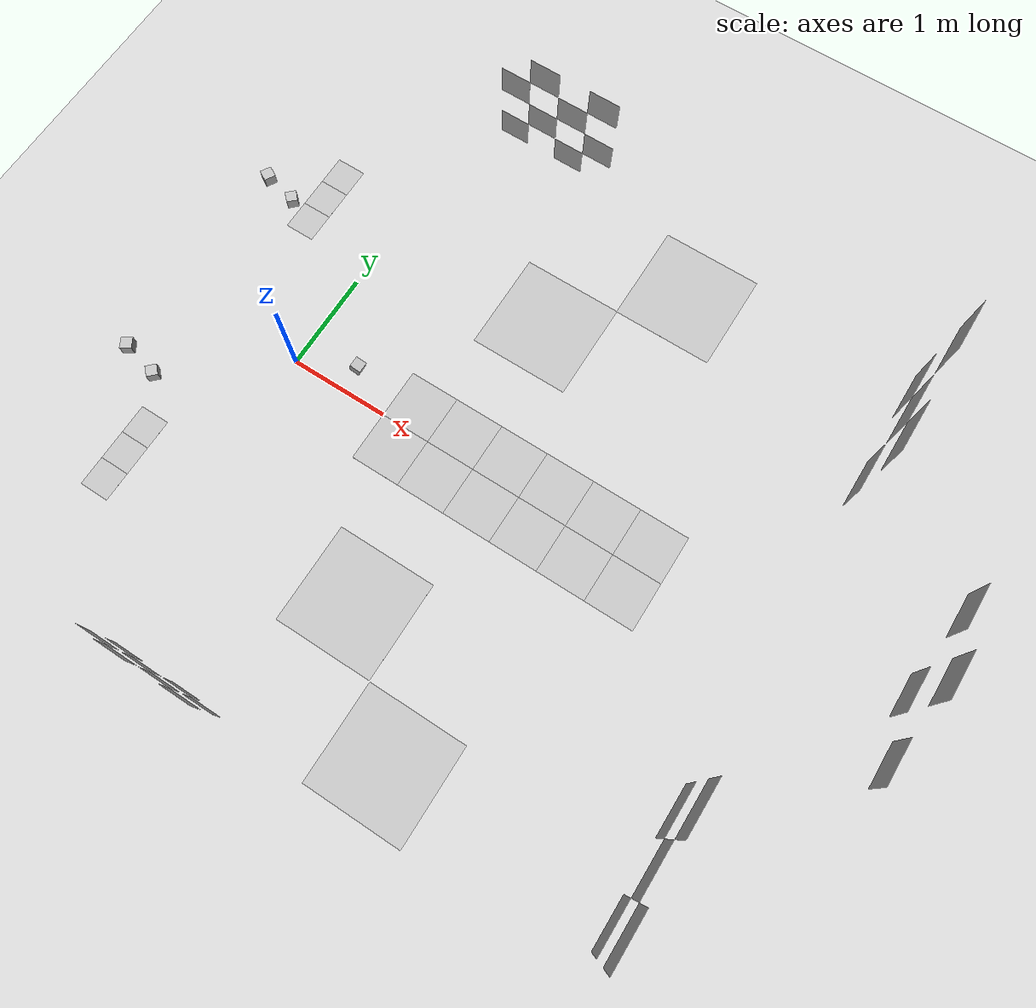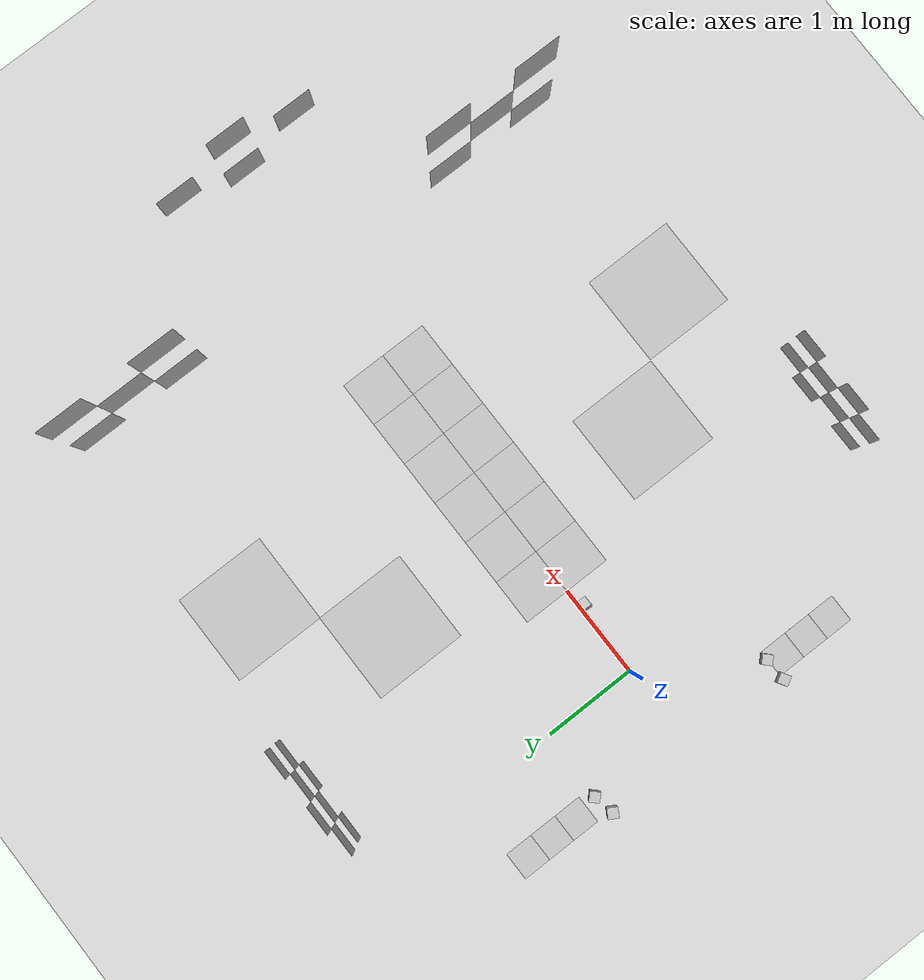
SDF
<sdf version="1.7">
 <world name="default">
  <model name="ground_plane">
   <pose>1.6 0 -0.001 0 -0 0</pose>
   <static>1</static>
   <link name="link">
    <collision name="collision">
     <geometry><plane><normal>0 0 1</normal><size>100 100</size></plane></geometry>
     <surface>
      <contact><collide_bitmask>65535</collide_bitmask></contact>
      <friction><ode><mu>100</mu><mu2>50</mu2></ode></friction>
     </surface>
    </collision>
    <visual name="visual">
     <cast_shadows>0</cast_shadows>
     <geometry><plane><normal>0 0 1</normal><size>100 100</size></plane></geometry>
     <material>
      <script><uri>file://media/materials/scripts/gazebo.material</uri><name>Gazebo/Grey</name></script>
     </material>
    </visual>
   </link>
  </model>
  <model name="Apriltag36_11_00000">
   <link name="main">
    <visual name="main_Visual">
     <geometry><box><size>0.5 0.5 0.0001</size></box></geometry>
     <material>
      <script>
       <uri>model://Apriltag36_11_00000/materials/scripts</uri>
       <uri>model://Apriltag36_11_00000/materials/textures</uri>
       <name>Apriltag36_11_00000</name>
      </script>
     </material>
    </visual>
    <collision name="collision"><geometry><box><size>0.5 0.5 0.0001</size></box></geometry></collision>
   </link>
   <static>1</static>
   <pose>3.75 0.25 0 0 -0 0</pose>
  </model>
  <model name="Apriltag36_11_00001">
   <link name="main">
    <visual name="main_Visual">
     <geometry><box><size>0.5 0.5 0.0001</size></box></geometry>
     <material>
      <script>
       <uri>model://Apriltag36_11_00001/materials/scripts</uri>
       <uri>model://Apriltag36_11_00001/materials/textures</uri>
       <name>Apriltag36_11_00001</name>
      </script>
     </material>
    </visual>
    <collision name="collision"><geometry><box><size>0.5 0.5 0.0001</size></box></geometry></collision>
   </link>
   <static>1</static>
   <pose>3.25 0.25 0 0 -0 0</pose>
  </model>
  <model name="Apriltag36_11_00002">
   <link name="main">
    <visual name="main_Visual">
     <geometry><box><size>0.5 0.5 0.0001</size></box></geometry>
     <material>
      <script>
       <uri>model://Apriltag36_11_00002/materials/scripts</uri>
       <uri>model://Apriltag36_11_00002/materials/textures</uri>
       <name>Apriltag36_11_00002</name>
      </script>
     </material>
    </visual>
    <collision name="collision"><geometry><box><size>0.5 0.5 0.0001</size></box></geometry></collision>
   </link>
   <static>1</static>
   <pose>2.75 0.25 0 0 -0 0</pose>
  </model>
  <model name="Apriltag36_11_00003">
   <link name="main">
    <visual name="main_Visual">
     <geometry><box><size>0.5 0.5 0.0001</size></box></geometry>
     <material>
      <script>
       <uri>model://Apriltag36_11_00003/materials/scripts</uri>
       <uri>model://Apriltag36_11_00003/materials/textures</uri>
       <name>Apriltag36_11_00003</name>
      </script>
     </material>
    </visual>
    <collision name="collision"><geometry><box><size>0.5 0.5 0.0001</size></box></geometry></collision>
   </link>
   <static>1</static>
   <pose>2.25 0.25 0 0 -0 0</pose>
  </model>
  <model name="Apriltag36_11_00004">
   <link name="main">
    <visual name="main_Visual">
     <geometry><box><size>0.5 0.5 0.0001</size></box></geometry>
     <material>
      <script>
       <uri>model://Apriltag36_11_00004/materials/scripts</uri>
       <uri>model://Apriltag36_11_00004/materials/textures</uri>
       <name>Apriltag36_11_00004</name>
      </script>
     </material>
    </visual>
    <collision name="collision"><geometry><box><size>0.5 0.5 0.0001</size></box></geometry></collision>
   </link>
   <static>1</static>
   <pose>3.75 -0.25 0 0 -0 0</pose>
  </model>
  <model name="Apriltag36_11_00005">
   <link name="main">
    <visual name="main_Visual">
     <geometry><box><size>0.5 0.5 0.0001</size></box></geometry>
     <material>
      <script>
       <uri>model://Apriltag36_11_00005/materials/scripts</uri>
       <uri>model://Apriltag36_11_00005/materials/textures</uri>
       <name>Apriltag36_11_00005</name>
      </script>
     </material>
    </visual>
    <collision name="collision"><geometry><box><size>0.5 0.5 0.0001</size></box></geometry></collision>
   </link>
   <static>1</static>
   <pose>3.25 -0.25 0 0 -0 0</pose>
  </model>
  <model name="Apriltag36_11_00006">
   <link name="main">
    <visual name="main_Visual">
     <geometry><box><size>0.5 0.5 0.0001</size></box></geometry>
     <material>
      <script>
       <uri>model://Apriltag36_11_00006/materials/scripts</uri>
       <uri>model://Apriltag36_11_00006/materials/textures</uri>
       <name>Apriltag36_11_00006</name>
      </script>
     </material>
    </visual>
    <collision name="collision"><geometry><box><size>0.5 0.5 0.0001</size></box></geometry></collision>
   </link>
   <static>1</static>
   <pose>2.75 -0.25 0 0 -0 0</pose>
  </model>
  <model name="Apriltag36_11_00007">
   <link name="main">
    <visual name="main_Visual">
     <geometry><box><size>0.5 0.5 0.0001</size></box></geometry>
     <material>
      <script>
       <uri>model://Apriltag36_11_00007/materials/scripts</uri>
       <uri>model://Apriltag36_11_00007/materials/textures</uri>
       <name>Apriltag36_11_00007</name>
      </script>
     </material>
    </visual>
    <collision name="collision"><geometry><box><size>0.5 0.5 0.0001</size></box></geometry></collision>
   </link>
   <static>1</static>
   <pose>2.25 -0.25 0 0 -0 0</pose>
  </model>
  <model name="Apriltag36_11_00016">
   <link name="main">
    <pose>0 0 0 0 -1.5707 0</pose>
    <visual name="main_Visual">
     <geometry><box><size>0.4 0.4 0.0001</size></box></geometry>
     <material>
      <script>
       <uri>model://Apriltag36_11_00016/materials/scripts</uri>
       <uri>model://Apriltag36_11_00016/materials/textures</uri>
       <name>Apriltag36_11_00016</name>
      </script>
     </material>
    </visual>
    <collision name="collision"><geometry><box><size>0.4 0.4 0.0001</size></box></geometry></collision>
   </link>
   <static>1</static>
   <pose>6 0 1.9 0 -0 0</pose>
  </model>
  <model name="Apriltag36_11_00017">
   <link name="main">
    <pose>0 0 0 0 -1.5707 0</pose>
    <visual name="main_Visual">
     <geometry><box><size>0.4 0.4 0.0001</size></box></geometry>
     <material>
      <script>
       <uri>model://Apriltag36_11_00017/materials/scripts</uri>
       <uri>model://Apriltag36_11_00017/materials/textures</uri>
       <name>Apriltag36_11_00017</name>
      </script>
     </material>
    </visual>
    <collision name="collision"><geometry><box><size>0.4 0.4 0.0001</size></box></geometry></collision>
   </link>
   <static>1</static>
   <pose>6 0.65 1.5 0 -0 0</pose>
  </model>
  <model name="Apriltag36_11_00018">
   <link name="main">
    <pose>0 0 0 0 -1.5707 0</pose>
    <visual name="main_Visual">
     <geometry><box><size>0.4 0.4 0.0001</size></box></geometry>
     <material>
      <script>
       <uri>model://Apriltag36_11_00018/materials/scripts</uri>
       <uri>model://Apriltag36_11_00018/materials/textures</uri>
       <name>Apriltag36_11_00018</name>
      </script>
     </material>
    </visual>
    <collision name="collision"><geometry><box><size>0.4 0.4 0.0001</size></box></geometry></collision>
   </link>
   <static>1</static>
   <pose>6 -0.65 1.5 0 -0 0</pose>
  </model>
  <model name="Apriltag36_11_00019">
   <link name="main">
    <pose>0 0 0 0 -1.5707 0</pose>
    <visual name="main_Visual">
     <geometry><box><size>0.4 0.4 0.0001</size></box></geometry>
     <material>
      <script>
       <uri>model://Apriltag36_11_00019/materials/scripts</uri>
       <uri>model://Apriltag36_11_00019/materials/textures</uri>
       <name>Apriltag36_11_00019</name>
      </script>
     </material>
    </visual>
    <collision name="collision"><geometry><box><size>0.4 0.4 0.0001</size></box></geometry></collision>
   </link>
   <static>1</static>
   <pose>6 0 1.1 0 -0 0</pose>
  </model>
  <model name="Apriltag36_11_00024">
   <link name="main">
    <pose>0 0 0 0 -1.5707 0</pose>
    <visual name="main_Visual">
     <geometry><box><size>0.5 0.5 0.0001</size></box></geometry>
     <material>
      <script>
       <uri>model://Apriltag36_11_00024/materials/scripts</uri>
       <uri>model://Apriltag36_11_00024/materials/textures</uri>
       <name>Apriltag36_11_00024</name>
      </script>
     </material>
    </visual>
    <collision name="collision"><geometry><box><size>0.5 0.5 0.0001</size></box></geometry></collision>
   </link>
   <static>1</static>
   <pose>5 1.65 1.5 0 -0 0</pose>
  </model>
  <model name="Apriltag36_11_00025">
   <link name="main">
    <pose>0 0 0 0 -1.5707 0</pose>
    <visual name="main_Visual">
     <geometry><box><size>0.5 0.5 0.0001</size></box></geometry>
     <material>
      <script>
       <uri>model://Apriltag36_11_00025/materials/scripts</uri>
       <uri>model://Apriltag36_11_00025/materials/textures</uri>
       <name>Apriltag36_11_00025</name>
      </script>
     </material>
    </visual>
    <collision name="collision"><geometry><box><size>0.5 0.5 0.0001</size></box></geometry></collision>
   </link>
   <static>1</static>
   <pose>5 1.65 0.5 0 -0 0</pose>
  </model>
  <model name="Apriltag36_11_00026">
   <link name="main">
    <pose>0 0 0 0 -1.5707 0</pose>
    <visual name="main_Visual">
     <geometry><box><size>0.5 0.5 0.0001</size></box></geometry>
     <material>
      <script>
       <uri>model://Apriltag36_11_00026/materials/scripts</uri>
       <uri>model://Apriltag36_11_00026/materials/textures</uri>
       <name>Apriltag36_11_00026</name>
      </script>
     </material>
    </visual>
    <collision name="collision"><geometry><box><size>0.5 0.5 0.0001</size></box></geometry></collision>
   </link>
   <static>1</static>
   <pose>5 -1.65 1.5 0 -0 0</pose>
  </model>
  <model name="Apriltag36_11_00027">
   <link name="main">
    <pose>0 0 0 0 -1.5707 0</pose>
    <visual name="main_Visual">
     <geometry><box><size>0.5 0.5 0.0001</size></box></geometry>
     <material>
      <script>
       <uri>model://Apriltag36_11_00027/materials/scripts</uri>
       <uri>model://Apriltag36_11_00027/materials/textures</uri>
       <name>Apriltag36_11_00027</name>
      </script>
     </material>
    </visual>
    <collision name="collision"><geometry><box><size>0.5 0.5 0.0001</size></box></geometry></collision>
   </link>
   <static>1</static>
   <pose>5 -1.65 0.5 0 -0 0</pose>
  </model>
  <model name="Apriltag36_11_00028">
   <link name="main">
    <pose>0 0 0 1.5707 -1.5707 0</pose>
    <visual name="main_Visual">
     <geometry><box><size>0.3 0.3 0.0001</size></box></geometry>
     <material>
      <script>
       <uri>model://Apriltag36_11_00028/materials/scripts</uri>
       <uri>model://Apriltag36_11_00028/materials/textures</uri>
       <name>Apriltag36_11_00028</name>
      </script>
     </material>
    </visual>
    <collision name="collision"><geometry><box><size>0.5 0.5 0.0001</size></box></geometry></collision>
   </link>
   <static>1</static>
   <pose>0.85 3 1.45 0 -0 0</pose>
  </model>
  <model name="Apriltag36_11_00029">
   <link name="main">
    <pose>0 0 0 1.5707 -1.5707 0</pose>
    <visual name="main_Visual">
     <geometry><box><size>0.3 0.3 0.0001</size></box></geometry>
     <material>
      <script>
       <uri>model://Apriltag36_11_00029/materials/scripts</uri>
       <uri>model://Apriltag36_11_00029/materials/textures</uri>
       <name>Apriltag36_11_00029</name>
      </script>
     </material>
    </visual>
    <collision name="collision"><geometry><box><size>0.5 0.5 0.0001</size></box></geometry></collision>
   </link>
   <static>1</static>
   <pose>1.45 3 1.45 0 -0 0</pose>
  </model>
  <model name="Apriltag36_11_00030">
   <link name="main">
    <pose>0 0 0 1.5707 -1.5707 0</pose>
    <visual name="main_Visual">
     <geometry><box><size>0.3 0.3 0.0001</size></box></geometry>
     <material>
      <script>
       <uri>model://Apriltag36_11_00030/materials/scripts</uri>
       <uri>model://Apriltag36_11_00030/materials/textures</uri>
       <name>Apriltag36_11_00030</name>
      </script>
     </material>
    </visual>
    <collision name="collision"><geometry><box><size>0.5 0.5 0.0001</size></box></geometry></collision>
   </link>
   <static>1</static>
   <pose>0.85 3 0.85 0 -0 0</pose>
  </model>
  <model name="Apriltag36_11_00031">
   <link name="main">
    <pose>0 0 0 1.5707 -1.5707 0</pose>
    <visual name="main_Visual">
     <geometry><box><size>0.3 0.3 0.0001</size></box></geometry>
     <material>
      <script>
       <uri>model://Apriltag36_11_00031/materials/scripts</uri>
       <uri>model://Apriltag36_11_00031/materials/textures</uri>
       <name>Apriltag36_11_00031</name>
      </script>
     </material>
    </visual>
    <collision name="collision"><geometry><box><size>0.5 0.5 0.0001</size></box></geometry></collision>
   </link>
   <static>1</static>
   <pose>1.15 3 1.15 0 -0 0</pose>
  </model>
  <model name="Apriltag36_11_00032">
   <link name="main">
    <pose>0 0 0 1.5707 -1.5707 0</pose>
    <visual name="main_Visual">
     <geometry><box><size>0.3 0.3 0.0001</size></box></geometry>
     <material>
      <script>
       <uri>model://Apriltag36_11_00032/materials/scripts</uri>
       <uri>model://Apriltag36_11_00032/materials/textures</uri>
       <name>Apriltag36_11_00032</name>
      </script>
     </material>
    </visual>
    <collision name="collision"><geometry><box><size>0.5 0.5 0.0001</size></box></geometry></collision>
   </link>
   <static>1</static>
   <pose>0.55 3 1.15 0 -0 0</pose>
  </model>
  <model name="Apriltag36_11_00033">
   <link name="main">
    <pose>0 0 0 1.5707 -1.5707 0</pose>
    <visual name="main_Visual">
     <geometry><box><size>0.3 0.3 0.0001</size></box></geometry>
     <material>
      <script>
       <uri>model://Apriltag36_11_00033/materials/scripts</uri>
       <uri>model://Apriltag36_11_00033/materials/textures</uri>
       <name>Apriltag36_11_00033</name>
      </script>
     </material>
    </visual>
    <collision name="collision"><geometry><box><size>0.5 0.5 0.0001</size></box></geometry></collision>
   </link>
   <static>1</static>
   <pose>1.45 3 0.85 0 -0 0</pose>
  </model>
  <model name="Apriltag36_11_00040">
   <link name="main">
    <pose>0 0 0 -1.5707 -1.5707 -0</pose>
    <visual name="main_Visual">
     <geometry><box><size>0.3 0.3 0.0001</size></box></geometry>
     <material>
      <script>
       <uri>model://Apriltag36_11_00040/materials/scripts</uri>
       <uri>model://Apriltag36_11_00040/materials/textures</uri>
       <name>Apriltag36_11_00040</name>
      </script>
     </material>
    </visual>
    <collision name="collision"><geometry><box><size>0.5 0.5 0.0001</size></box></geometry></collision>
   </link>
   <static>1</static>
   <pose>1.15 -3 1.15 0 -0 0</pose>
  </model>
  <model name="Apriltag36_11_00041">
   <link name="main">
    <pose>0 0 0 -1.5707 -1.5707 -0</pose>
    <visual name="main_Visual">
     <geometry><box><size>0.3 0.3 0.0001</size></box></geometry>
     <material>
      <script>
       <uri>model://Apriltag36_11_00041/materials/scripts</uri>
       <uri>model://Apriltag36_11_00041/materials/textures</uri>
       <name>Apriltag36_11_00041</name>
      </script>
     </material>
    </visual>
    <collision name="collision"><geometry><box><size>0.5 0.5 0.0001</size></box></geometry></collision>
   </link>
   <static>1</static>
   <pose>0.85 -3 0.85 0 -0 0</pose>
  </model>
  <model name="Apriltag36_11_00042">
   <link name="main">
    <pose>0 0 0 -1.5707 -1.5707 -0</pose>
    <visual name="main_Visual">
     <geometry><box><size>0.3 0.3 0.0001</size></box></geometry>
     <material>
      <script>
       <uri>model://Apriltag36_11_00042/materials/scripts</uri>
       <uri>model://Apriltag36_11_00042/materials/textures</uri>
       <name>Apriltag36_11_00042</name>
      </script>
     </material>
    </visual>
    <collision name="collision"><geometry><box><size>0.5 0.5 0.0001</size></box></geometry></collision>
   </link>
   <static>1</static>
   <pose>0.85 -3 1.45 0 -0 0</pose>
  </model>
  <model name="Apriltag36_11_00043">
   <link name="main">
    <pose>0 0 0 -1.5707 -1.5707 -0</pose>
    <visual name="main_Visual">
     <geometry><box><size>0.3 0.3 0.0001</size></box></geometry>
     <material>
      <script>
       <uri>model://Apriltag36_11_00043/materials/scripts</uri>
       <uri>model://Apriltag36_11_00043/materials/textures</uri>
       <name>Apriltag36_11_00043</name>
      </script>
     </material>
    </visual>
    <collision name="collision"><geometry><box><size>0.5 0.5 0.0001</size></box></geometry></collision>
   </link>
   <static>1</static>
   <pose>0.55 -3 1.15 0 -0 0</pose>
  </model>
  <model name="Apriltag36_11_00044">
   <link name="main">
    <pose>0 0 0 -1.5707 -1.5707 -0</pose>
    <visual name="main_Visual">
     <geometry><box><size>0.3 0.3 0.0001</size></box></geometry>
     <material>
      <script>
       <uri>model://Apriltag36_11_00044/materials/scripts</uri>
       <uri>model://Apriltag36_11_00044/materials/textures</uri>
       <name>Apriltag36_11_00044</name>
      </script>
     </material>
    </visual>
    <collision name="collision"><geometry><box><size>0.5 0.5 0.0001</size></box></geometry></collision>
   </link>
   <static>1</static>
   <pose>1.15 -3 0.55 0 -0 0</pose>
  </model>
  <model name="Apriltag36_11_00045">
   <link name="main">
    <pose>0 0 0 -1.5707 -1.5707 -0</pose>
    <visual name="main_Visual">
     <geometry><box><size>0.3 0.3 0.0001</size></box></geometry>
     <material>
      <script>
       <uri>model://Apriltag36_11_00045/materials/scripts</uri>
       <uri>model://Apriltag36_11_00045/materials/textures</uri>
       <name>Apriltag36_11_00045</name>
      </script>
     </material>
    </visual>
    <collision name="collision"><geometry><box><size>0.5 0.5 0.0001</size></box></geometry></collision>
   </link>
   <static>1</static>
   <pose>0.55 -3 0.55 0 -0 0</pose>
  </model>
  <model name="Apriltag36_11_00052">
   <link name="main">
    <visual name="main_Visual">
     <geometry><box><size>1 1 0.0001</size></box></geometry>
     <material>
      <script>
       <uri>model://Apriltag36_11_00052/materials/scripts</uri>
       <uri>model://Apriltag36_11_00052/materials/textures</uri>
       <name>Apriltag36_11_00052</name>
      </script>
     </material>
    </visual>
    <collision name="collision"><geometry><box><size>1 1 0.0001</size></box></geometry></collision>
   </link>
   <static>1</static>
   <pose>1.8 1.6 0 0 -0 0</pose>
  </model>
  <model name="Apriltag36_11_00053">
   <link name="main">
    <visual name="main_Visual">
     <geometry><box><size>1 1 0.0001</size></box></geometry>
     <material>
      <script>
       <uri>model://Apriltag36_11_00053/materials/scripts</uri>
       <uri>model://Apriltag36_11_00053/materials/textures</uri>
       <name>Apriltag36_11_00053</name>
      </script>
     </material>
    </visual>
    <collision name="collision"><geometry><box><size>1 1 0.0001</size></box></geometry></collision>
   </link>
   <static>1</static>
   <pose>1.8 -1.6 0 0 -0 0</pose>
  </model>
  <model name="Apriltag36_11_00056">
   <link name="main">
    <visual name="main_Visual">
     <geometry><box><size>0.3 0.3 0.0001</size></box></geometry>
     <material>
      <script>
       <uri>model://Apriltag36_11_00056/materials/scripts</uri>
       <uri>model://Apriltag36_11_00056/materials/textures</uri>
       <name>Apriltag36_11_00056</name>
      </script>
     </material>
    </visual>
    <collision name="collision"><geometry><box><size>0.3 0.3 0.0001</size></box></geometry></collision>
   </link>
   <static>1</static>
   <pose>-0.8 1.9 0 0 -0 0</pose>
  </model>
  <model name="Apriltag36_11_00057">
   <link name="main">
    <visual name="main_Visual">
     <geometry><box><size>0.3 0.3 0.0001</size></box></geometry>
     <material>
      <script>
       <uri>model://Apriltag36_11_00057/materials/scripts</uri>
       <uri>model://Apriltag36_11_00057/materials/textures</uri>
       <name>Apriltag36_11_00057</name>
      </script>
     </material>
    </visual>
    <collision name="collision"><geometry><box><size>0.3 0.3 0.0001</size></box></geometry></collision>
   </link>
   <static>1</static>
   <pose>-0.8 1.6 0 0 -0 0</pose>
  </model>
  <model name="Apriltag36_11_00058">
   <link name="main">
    <visual name="main_Visual">
     <geometry><box><size>0.3 0.3 0.0001</size></box></geometry>
     <material>
      <script>
       <uri>model://Apriltag36_11_00058/materials/scripts</uri>
       <uri>model://Apriltag36_11_00058/materials/textures</uri>
       <name>Apriltag36_11_00058</name>
      </script>
     </material>
    </visual>
    <collision name="collision"><geometry><box><size>0.3 0.3 0.0001</size></box></geometry></collision>
   </link>
   <static>1</static>
   <pose>-0.8 1.3 0 0 -0 0</pose>
  </model>
  <model name="Apriltag36_11_00065">
   <link name="main">
    <visual name="main_Visual">
     <geometry><box><size>0.3 0.3 0.0001</size></box></geometry>
     <material>
      <script>
       <uri>model://Apriltag36_11_00065/materials/scripts</uri>
       <uri>model://Apriltag36_11_00065/materials/textures</uri>
       <name>Apriltag36_11_00065</name>
      </script>
     </material>
    </visual>
    <collision name="collision"><geometry><box><size>0.3 0.3 0.0001</size></box></geometry></collision>
   </link>
   <static>1</static>
   <pose>-0.8 -1.9 0 0 -0 0</pose>
  </model>
  <model name="Apriltag36_11_00066">
   <link name="main">
    <visual name="main_Visual">
     <geometry><box><size>0.3 0.3 0.0001</size></box></geometry>
     <material>
      <script>
       <uri>model://Apriltag36_11_00066/materials/scripts</uri>
       <uri>model://Apriltag36_11_00066/materials/textures</uri>
       <name>Apriltag36_11_00066</name>
      </script>
     </material>
    </visual>
    <collision name="collision"><geometry><box><size>0.3 0.3 0.0001</size></box></geometry></collision>
   </link>
   <static>1</static>
   <pose>-0.8 -1.6 0 0 -0 0</pose>
  </model>
  <model name="Apriltag36_11_00067">
   <link name="main">
    <visual name="main_Visual">
     <geometry><box><size>0.3 0.3 0.0001</size></box></geometry>
     <material>
      <script>
       <uri>model://Apriltag36_11_00067/materials/scripts</uri>
       <uri>model://Apriltag36_11_00067/materials/textures</uri>
       <name>Apriltag36_11_00067</name>
      </script>
     </material>
    </visual>
    <collision name="collision"><geometry><box><size>0.3 0.3 0.0001</size></box></geometry></collision>
   </link>
   <static>1</static>
   <pose>-0.8 -1.3 0 0 -0 0</pose>
  </model>
  <model name="jetour_nrcs_front">
   <pose>0.854392 0 0.937 0 0.2443 0</pose>
   <link name="link">
    <inertial><mass>0.1</mass></inertial>
    <collision name="collision"><geometry><box><size>0.1 0.1 0.1</size></box></geometry></collision>
    <visual name="visual"><geometry><box><size>0.1 0.1 0.1</size></box></geometry></visual>
    <sensor name="camera" type="wideanglecamera">
     <camera>
      <horizontal_fov>3.40339</horizontal_fov>
      <image><width>1920</width><height>1536</height></image>
      <clip><near>0.1</near><far>100</far></clip>
      <lens>
       <type>stereographic</type>
       <scale_to_hfov>1</scale_to_hfov>
       <cutoff_angle>1.7</cutoff_angle>
       <env_texture_size>512</env_texture_size>
      </lens>
     </camera>
     <always_on>1</always_on>
     <update_rate>30</update_rate>
     <plugin name="camera_controller" filename="libgazebo_ros_camera.so">
      <alwaysOn>1</alwaysOn>
      <updateRate>0.0</updateRate>
      <cameraName>jetour_nrcs_front</cameraName>
      <imageTopicName>jetour_nrcs_front_image_raw</imageTopicName>
      <cameraInfoTopicName>jetour_nrcs_front_camera_info</cameraInfoTopicName>
      <frameName>jetour_nrcs_front_link</frameName>
      <hackBaseline>0.07</hackBaseline>
      <distortionK1>0.0</distortionK1>
      <distortionK2>0.0</distortionK2>
      <distortionK3>0.0</distortionK3>
      <distortionT1>0.0</distortionT1>
      <distortionT2>0.0</distortionT2>
     </plugin>
    </sensor>
   </link>
   <static>1</static>
  </model>
  <model name="Apriltag36_11_00025_clone">
   <link name="main">
    <pose>0 0 0 0 -1.5707 0</pose>
    <visual name="main_Visual">
     <geometry><box><size>0.5 0.5 0.0001</size></box></geometry>
     <material>
      <script>
       <uri>model://Apriltag36_11_00025/materials/scripts</uri>
       <uri>model://Apriltag36_11_00025/materials/textures</uri>
       <name>Apriltag36_11_00025</name>
      </script>
     </material>
    </visual>
    <collision name="collision"><geometry><box><size>0.5 0.5 0.0001</size></box></geometry></collision>
   </link>
   <static>1</static>
   <pose>5 2.15 1 0 -0 0</pose>
  </model>
  <model name="Apriltag36_11_00027_clone">
   <link name="main">
    <pose>0 0 0 0 -1.5707 0</pose>
    <visual name="main_Visual">
     <geometry><box><size>0.5 0.5 0.0001</size></box></geometry>
     <material>
      <script>
       <uri>model://Apriltag36_11_00027/materials/scripts</uri>
       <uri>model://Apriltag36_11_00027/materials/textures</uri>
       <name>Apriltag36_11_00027</name>
      </script>
     </material>
    </visual>
    <collision name="collision"><geometry><box><size>0.5 0.5 0.0001</size></box></geometry></collision>
   </link>
   <static>1</static>
   <pose>5 -2.15 1 0 -0 0</pose>
  </model>
  <model name="Apriltag36_11_00007_clone">
   <link name="main">
    <visual name="main_Visual">
     <geometry><box><size>0.5 0.5 0.0001</size></box></geometry>
     <material>
      <script>
       <uri>model://Apriltag36_11_00007/materials/scripts</uri>
       <uri>model://Apriltag36_11_00007/materials/textures</uri>
       <name>Apriltag36_11_00007</name>
      </script>
     </material>
    </visual>
    <collision name="collision"><geometry><box><size>0.5 0.5 0.0001</size></box></geometry></collision>
   </link>
   <static>1</static>
   <pose>1.75 -0.25 0 0 -0 0</pose>
  </model>
  <model name="Apriltag36_11_00007_clone_0">
   <link name="main">
    <visual name="main_Visual">
     <geometry><box><size>0.5 0.5 0.0001</size></box></geometry>
     <material>
      <script>
       <uri>model://Apriltag36_11_00007/materials/scripts</uri>
       <uri>model://Apriltag36_11_00007/materials/textures</uri>
       <name>Apriltag36_11_00007</name>
      </script>
     </material>
    </visual>
    <collision name="collision"><geometry><box><size>0.5 0.5 0.0001</size></box></geometry></collision>
   </link>
   <static>1</static>
   <pose>1.25 -0.25 0 0 -0 0</pose>
  </model>
  <model name="Apriltag36_11_00007_clone_1">
   <link name="main">
    <visual name="main_Visual">
     <geometry><box><size>0.5 0.5 0.0001</size></box></geometry>
     <material>
      <script>
       <uri>model://Apriltag36_11_00007/materials/scripts</uri>
       <uri>model://Apriltag36_11_00007/materials/textures</uri>
       <name>Apriltag36_11_00007</name>
      </script>
     </material>
    </visual>
    <collision name="collision"><geometry><box><size>0.5 0.5 0.0001</size></box></geometry></collision>
   </link>
   <static>1</static>
   <pose>1.75 0.25 0 0 -0 0</pose>
  </model>
  <model name="Apriltag36_11_00007_clone_2">
   <link name="main">
    <visual name="main_Visual">
     <geometry><box><size>0.5 0.5 0.0001</size></box></geometry>
     <material>
      <script>
       <uri>model://Apriltag36_11_00007/materials/scripts</uri>
       <uri>model://Apriltag36_11_00007/materials/textures</uri>
       <name>Apriltag36_11_00007</name>
      </script>
     </material>
    </visual>
    <collision name="collision"><geometry><box><size>0.5 0.5 0.0001</size></box></geometry></collision>
   </link>
   <static>1</static>
   <pose>1.25 0.25 0 0 -0 0</pose>
  </model>
  <model name="Apriltag36_11_00033_clone">
   <link name="main">
    <pose>0 0 0 1.5707 -1.5707 0</pose>
    <visual name="main_Visual">
     <geometry><box><size>0.3 0.3 0.0001</size></box></geometry>
     <material>
      <script>
       <uri>model://Apriltag36_11_00033/materials/scripts</uri>
       <uri>model://Apriltag36_11_00033/materials/textures</uri>
       <name>Apriltag36_11_00033</name>
      </script>
     </material>
    </visual>
    <collision name="collision"><geometry><box><size>0.5 0.5 0.0001</size></box></geometry></collision>
   </link>
   <static>1</static>
   <pose>1.15 3 0.55 0 -0 0</pose>
  </model>
  <model name="Apriltag36_11_00032_clone">
   <link name="main">
    <pose>0 0 0 1.5707 -1.5707 0</pose>
    <visual name="main_Visual">
     <geometry><box><size>0.3 0.3 0.0001</size></box></geometry>
     <material>
      <script>
       <uri>model://Apriltag36_11_00032/materials/scripts</uri>
       <uri>model://Apriltag36_11_00032/materials/textures</uri>
       <name>Apriltag36_11_00032</name>
      </script>
     </material>
    </visual>
    <collision name="collision"><geometry><box><size>0.5 0.5 0.0001</size></box></geometry></collision>
   </link>
   <static>1</static>
   <pose>0.55 3 0.55 0 -0 0</pose>
  </model>
  <model name="Apriltag36_11_00040_clone">
   <link name="main">
    <pose>0 0 0 -1.5707 -1.5707 -0</pose>
    <visual name="main_Visual">
     <geometry><box><size>0.3 0.3 0.0001</size></box></geometry>
     <material>
      <script>
       <uri>model://Apriltag36_11_00040/materials/scripts</uri>
       <uri>model://Apriltag36_11_00040/materials/textures</uri>
       <name>Apriltag36_11_00040</name>
      </script>
     </material>
    </visual>
    <collision name="collision"><geometry><box><size>0.5 0.5 0.0001</size></box></geometry></collision>
   </link>
   <static>1</static>
   <pose>1.45 -3 1.45 0 -0 0</pose>
  </model>
  <model name="Apriltag36_11_00040_clone_0">
   <link name="main">
    <pose>0 0 0 -1.5707 -1.5707 -0</pose>
    <visual name="main_Visual">
     <geometry><box><size>0.3 0.3 0.0001</size></box></geometry>
     <material>
      <script>
       <uri>model://Apriltag36_11_00040/materials/scripts</uri>
       <uri>model://Apriltag36_11_00040/materials/textures</uri>
       <name>Apriltag36_11_00040</name>
      </script>
     </material>
    </visual>
    <collision name="collision"><geometry><box><size>0.5 0.5 0.0001</size></box></geometry></collision>
   </link>
   <static>1</static>
   <pose>1.45 -3 0.85 0 -0 0</pose>
  </model>
  <model name="around_front_left_cam">
   <pose>-0.70707 0.955 1.28 0.00251 -0 1.0472</pose>
   <link name="link">
    <inertial>
     <mass>0.1</mass>
     <inertia>
      <ixx>0.000166667</ixx>
      <iyy>0.000166667</iyy>
      <izz>0.000166667</izz>
      <ixy>0</ixy>
      <ixz>0</ixz>
      <iyz>0</iyz>
     </inertia>
    </inertial>
    <collision name="collision"><geometry><box><size>0.1 0.1 0.1</size></box></geometry></collision>
    <visual name="visual"><geometry><box><size>0.1 0.1 0.1</size></box></geometry></visual>
    <sensor name="camera" type="camera">
     <camera>
      <horizontal_fov>1.74533</horizontal_fov>
      <image><width>1920</width><height>1280</height></image>
      <clip><near>0.1</near><far>100</far></clip>
      <distortion>
       <k1>-0.502779</k1>
       <k2>0.329759</k2>
       <k3>-0.30564</k3>
       <p1>0</p1>
       <p2>0</p2>
       <center>0.48477 0.5326</center>
      </distortion>
      <noise><type>gaussian</type><mean>0</mean><stddev>0.007</stddev></noise>
     </camera>
     <plugin name="camera_controller" filename="libgazebo_ros_camera.so">
      <alwaysOn>1</alwaysOn>
      <updateRate>0.0</updateRate>
      <cameraName>qirui_around_front_left_cam</cameraName>
      <imageTopicName>around_front_left_image_raw</imageTopicName>
      <cameraInfoTopicName>around_front_left_camera_info</cameraInfoTopicName>
      <frameName>around_front_left_camera_link</frameName>
      <hackBaseline>0.0</hackBaseline>
      <distortionK1>-0.5027794468124849</distortionK1>
      <distortionK2>0.329759300565976</distortionK2>
      <distortionK3>-0.3056395265387194</distortionK3>
      <distortionT1>0.0</distortionT1>
      <distortionT2>0.0</distortionT2>
     </plugin>
     <always_on>1</always_on>
     <update_rate>30</update_rate>
     <visualize>1</visualize>
    </sensor>
   </link>
   <static>1</static>
  </model>
  <model name="around_front_right_cam">
   <pose>-0.72864 -0.96928 1.28 0.00667 0 -1.0472</pose>
   <link name="link">
    <inertial>
     <mass>0.1</mass>
     <inertia>
      <ixx>0.000166667</ixx>
      <iyy>0.000166667</iyy>
      <izz>0.000166667</izz>
      <ixy>0</ixy>
      <ixz>0</ixz>
      <iyz>0</iyz>
     </inertia>
    </inertial>
    <collision name="collision"><geometry><box><size>0.1 0.1 0.1</size></box></geometry></collision>
    <visual name="visual"><geometry><box><size>0.1 0.1 0.1</size></box></geometry></visual>
    <sensor name="camera" type="camera">
     <camera>
      <horizontal_fov>1.74533</horizontal_fov>
      <image><width>1920</width><height>1280</height></image>
      <clip><near>0.1</near><far>100</far></clip>
      <distortion>
       <k1>-0.502779</k1>
       <k2>0.329759</k2>
       <k3>-0.30564</k3>
       <p1>0</p1>
       <p2>0</p2>
       <center>0.48477 0.5326</center>
      </distortion>
      <noise><type>gaussian</type><mean>0</mean><stddev>0.007</stddev></noise>
     </camera>
     <plugin name="camera_controller" filename="libgazebo_ros_camera.so">
      <alwaysOn>1</alwaysOn>
      <updateRate>0.0</updateRate>
      <cameraName>qirui_around_front_right_cam</cameraName>
      <imageTopicName>around_front_right_image_raw</imageTopicName>
      <cameraInfoTopicName>around_front_right_camera_info</cameraInfoTopicName>
      <frameName>around_front_right_camera_link</frameName>
      <hackBaseline>0.0</hackBaseline>
      <distortionK1>0.0</distortionK1>
      <distortionK2>0.0</distortionK2>
      <distortionK3>0.0</distortionK3>
      <distortionT1>0.0</distortionT1>
      <distortionT2>0.0</distortionT2>
     </plugin>
     <always_on>1</always_on>
     <update_rate>30</update_rate>
     <visualize>1</visualize>
    </sensor>
   </link>
   <static>1</static>
  </model>
  <model name="around_rear_left_cam">
   <pose>-0.55438 1.00141 0.99371 0.00251 0 2.356</pose>
   <link name="link">
    <inertial>
     <mass>0.1</mass>
     <inertia>
      <ixx>0.000166667</ixx>
      <iyy>0.000166667</iyy>
      <izz>0.000166667</izz>
      <ixy>0</ixy>
      <ixz>0</ixz>
      <iyz>0</iyz>
     </inertia>
    </inertial>
    <collision name="collision"><geometry><box><size>0.1 0.1 0.1</size></box></geometry></collision>
    <visual name="visual"><geometry><box><size>0.1 0.1 0.1</size></box></geometry></visual>
    <sensor name="camera" type="camera">
     <camera>
      <horizontal_fov>1.74533</horizontal_fov>
      <image><width>1920</width><height>1280</height></image>
      <clip><near>0.1</near><far>100</far></clip>
      <distortion>
       <k1>-0.502779</k1>
       <k2>0.329759</k2>
       <k3>-0.30564</k3>
       <p1>0</p1>
       <p2>0</p2>
       <center>0.48477 0.5326</center>
      </distortion>
      <noise><type>gaussian</type><mean>0</mean><stddev>0.007</stddev></noise>
     </camera>
     <plugin name="camera_controller" filename="libgazebo_ros_camera.so">
      <alwaysOn>1</alwaysOn>
      <updateRate>0.0</updateRate>
      <cameraName>qirui_around_rear_left_cam</cameraName>
      <imageTopicName>around_rear_left_image_raw</imageTopicName>
      <cameraInfoTopicName>around_rear_left_camera_info</cameraInfoTopicName>
      <frameName>around_rear_left_camera_link</frameName>
      <hackBaseline>0.0</hackBaseline>
      <distortionK1>-0.5027794468124849</distortionK1>
      <distortionK2>0.329759300565976</distortionK2>
      <distortionK3>-0.3056395265387194</distortionK3>
      <distortionT1>0.0</distortionT1>
      <distortionT2>0.0</distortionT2>
     </plugin>
     <always_on>1</always_on>
     <update_rate>30</update_rate>
     <visualize>1</visualize>
    </sensor>
   </link>
   <static>1</static>
  </model>
  <model name="around_rear_right_cam">
   <pose>-0.55438 -1.00141 0.99371 0.00251 -0 -2.356</pose>
   <link name="link">
    <inertial>
     <mass>0.1</mass>
     <inertia>
      <ixx>0.000166667</ixx>
      <iyy>0.000166667</iyy>
      <izz>0.000166667</izz>
      <ixy>0</ixy>
      <ixz>0</ixz>
      <iyz>0</iyz>
     </inertia>
    </inertial>
    <collision name="collision"><geometry><box><size>0.1 0.1 0.1</size></box></geometry></collision>
    <visual name="visual"><geometry><box><size>0.1 0.1 0.1</size></box></geometry></visual>
    <sensor name="camera" type="camera">
     <camera>
      <horizontal_fov>1.74533</horizontal_fov>
      <image><width>1920</width><height>1280</height></image>
      <clip><near>0.1</near><far>100</far></clip>
      <distortion>
       <k1>-0.502779</k1>
       <k2>0.329759</k2>
       <k3>-0.30564</k3>
       <p1>0</p1>
       <p2>0</p2>
       <center>0.48477 0.5326</center>
      </distortion>
      <noise><type>gaussian</type><mean>0</mean><stddev>0.007</stddev></noise>
     </camera>
     <plugin name="camera_controller" filename="libgazebo_ros_camera.so">
      <alwaysOn>1</alwaysOn>
      <updateRate>0.0</updateRate>
      <cameraName>qirui_around_rear_right_cam</cameraName>
      <imageTopicName>around_rear_right_image_raw</imageTopicName>
      <cameraInfoTopicName>around_rear_right_camera_info</cameraInfoTopicName>
      <frameName>around_rear_right_camera_link</frameName>
      <hackBaseline>0.0</hackBaseline>
      <distortionK1>-0.5027794468124849</distortionK1>
      <distortionK2>>0.329759300565976</distortionK2>
      <distortionK3>-0.3056395265387194</distortionK3>
      <distortionT1>0.0</distortionT1>
      <distortionT2>0.0</distortionT2>
     </plugin>
     <always_on>1</always_on>
     <update_rate>30</update_rate>
     <visualize>1</visualize>
    </sensor>
   </link>
   <static>1</static>
  </model>
  <model name="Apriltag36_11_00024_clone">
   <link name="main">
    <pose>0 0 0 0 -1.5707 0</pose>
    <visual name="main_Visual">
     <geometry><box><size>0.5 0.5 0.0001</size></box></geometry>
     <material>
      <script>
       <uri>model://Apriltag36_11_00024/materials/scripts</uri>
       <uri>model://Apriltag36_11_00024/materials/textures</uri>
       <name>Apriltag36_11_00024</name>
      </script>
     </material>
    </visual>
    <collision name="collision"><geometry><box><size>0.5 0.5 0.0001</size></box></geometry></collision>
   </link>
   <static>1</static>
   <pose>5 2.65 1.5 0 -0 0</pose>
  </model>
  <model name="Apriltag36_11_00025_clone_0">
   <link name="main">
    <pose>0 0 0 0 -1.5707 0</pose>
    <visual name="main_Visual">
     <geometry><box><size>0.5 0.5 0.0001</size></box></geometry>
     <material>
      <script>
       <uri>model://Apriltag36_11_00025/materials/scripts</uri>
       <uri>model://Apriltag36_11_00025/materials/textures</uri>
       <name>Apriltag36_11_00025</name>
      </script>
     </material>
    </visual>
    <collision name="collision"><geometry><box><size>0.5 0.5 0.0001</size></box></geometry></collision>
   </link>
   <static>1</static>
   <pose>5 2.65 0.5 0 -0 0</pose>
  </model>
  <model name="Apriltag36_11_00026_clone">
   <link name="main">
    <pose>0 0 0 0 -1.5707 0</pose>
    <visual name="main_Visual">
     <geometry><box><size>0.5 0.5 0.0001</size></box></geometry>
     <material>
      <script>
       <uri>model://Apriltag36_11_00026/materials/scripts</uri>
       <uri>model://Apriltag36_11_00026/materials/textures</uri>
       <name>Apriltag36_11_00026</name>
      </script>
     </material>
    </visual>
    <collision name="collision"><geometry><box><size>0.5 0.5 0.0001</size></box></geometry></collision>
   </link>
   <static>1</static>
   <pose>5 -2.65 1.5 0 -0 0</pose>
  </model>
  <model name="Apriltag36_11_00027_clone_0">
   <link name="main">
    <pose>0 0 0 0 -1.5707 0</pose>
    <visual name="main_Visual">
     <geometry><box><size>0.5 0.5 0.0001</size></box></geometry>
     <material>
      <script>
       <uri>model://Apriltag36_11_00027/materials/scripts</uri>
       <uri>model://Apriltag36_11_00027/materials/textures</uri>
       <name>Apriltag36_11_00027</name>
      </script>
     </material>
    </visual>
    <collision name="collision"><geometry><box><size>0.5 0.5 0.0001</size></box></geometry></collision>
   </link>
   <static>1</static>
   <pose>5 -2.65 0.5 0 -0 0</pose>
  </model>
  <model name="Apriltag36_11_00052_clone">
   <link name="main">
    <visual name="main_Visual">
     <geometry><box><size>1 1 0.0001</size></box></geometry>
     <material>
      <script>
       <uri>model://Apriltag36_11_00052/materials/scripts</uri>
       <uri>model://Apriltag36_11_00052/materials/textures</uri>
       <name>Apriltag36_11_00052</name>
      </script>
     </material>
    </visual>
    <collision name="collision"><geometry><box><size>1 1 0.0001</size></box></geometry></collision>
   </link>
   <static>1</static>
   <pose>2.79589 2.59594 0 0 -0 0</pose>
  </model>
  <model name="Apriltag36_11_00053_clone">
   <link name="main">
    <visual name="main_Visual">
     <geometry><box><size>1 1 0.0001</size></box></geometry>
     <material>
      <script>
       <uri>model://Apriltag36_11_00053/materials/scripts</uri>
       <uri>model://Apriltag36_11_00053/materials/textures</uri>
       <name>Apriltag36_11_00053</name>
      </script>
     </material>
    </visual>
    <collision name="collision"><geometry><box><size>1 1 0.0001</size></box></geometry></collision>
   </link>
   <static>1</static>
   <pose>2.80901 -2.60358 0 0 -0 0</pose>
  </model>
 </world>
</sdf>
